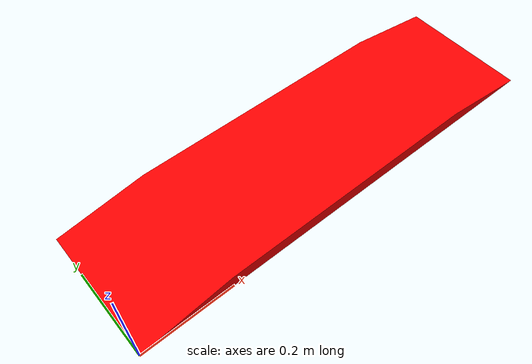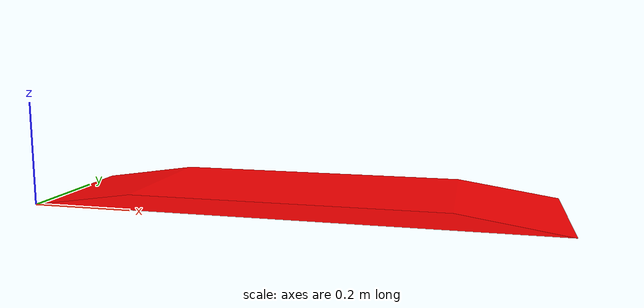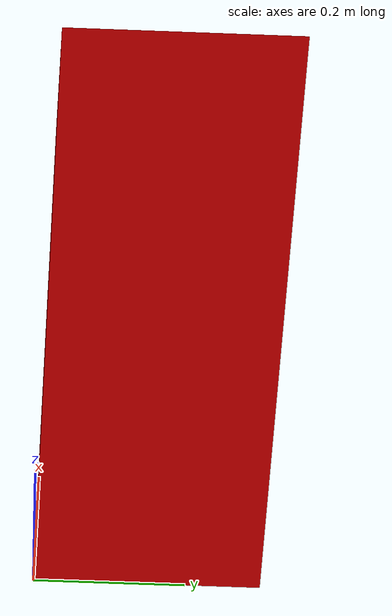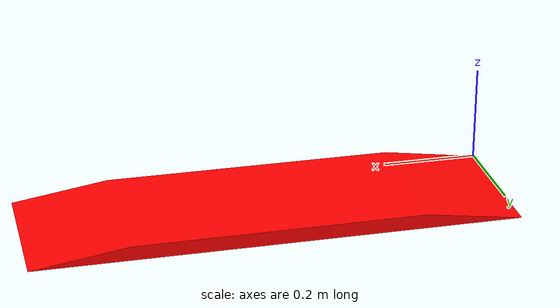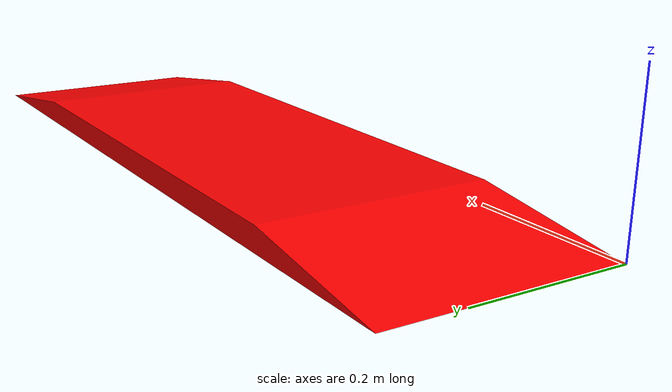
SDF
<?xml version="1.0" ?>
<sdf version="1.6">
  <model name="speed_bump">
    <static>true</static>
    <link name="link">
      <visual name="visual">
        <geometry>
          <mesh>
            <uri>model://turtlebot3_autorace_2020/speed_bump/meshes/speed_bump.dae</uri>
          </mesh>
        </geometry>
      </visual>
      <collision name="collision">
        <geometry>
          <mesh>
            <uri>model://turtlebot3_autorace_2020/speed_bump/meshes/speed_bump.dae</uri>
          </mesh>
        </geometry>
      </collision>
    </link>
  </model>
</sdf>
